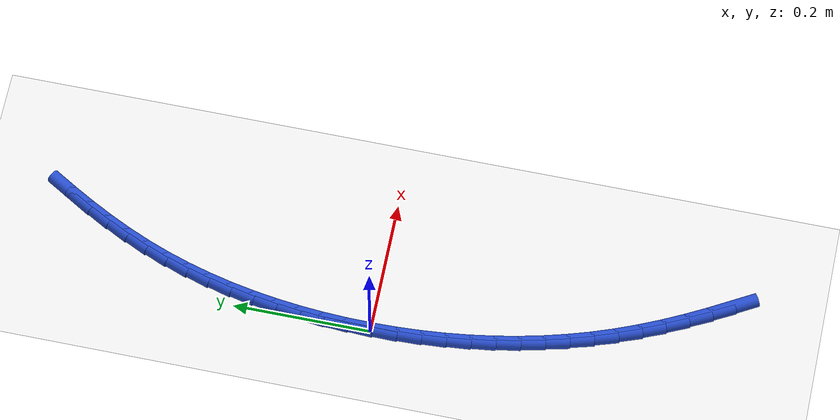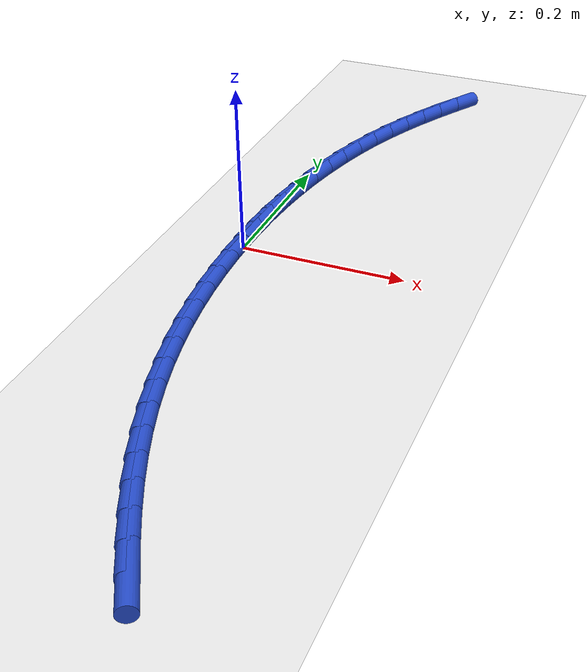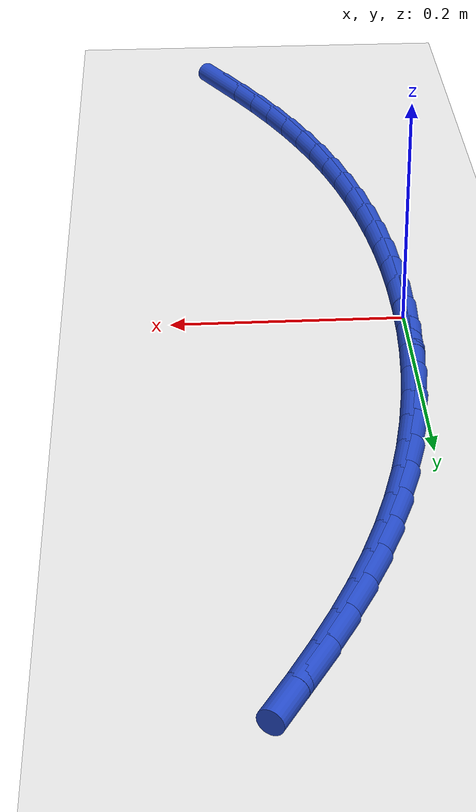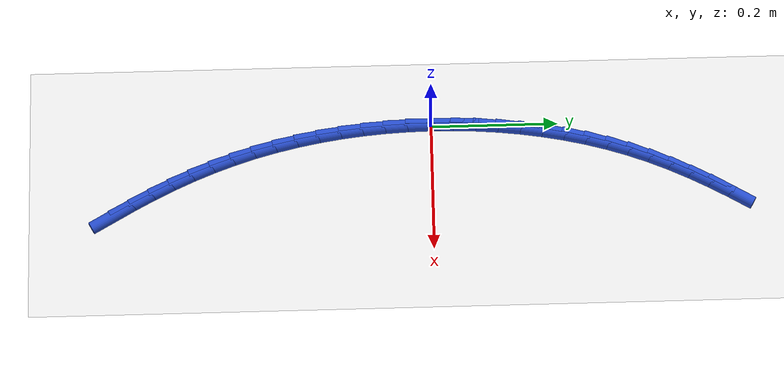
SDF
<sdf version="1.6">
 <world name="default">
  <model name="ground_plane">
   <static>1</static>
   <link name="link">
    <collision name="collision">
     <geometry><plane><normal>0 0 1</normal><size>100 100</size></plane></geometry>
     <surface><friction><ode><mu>100</mu><mu2>50</mu2></ode></friction></surface>
    </collision>
    <visual name="visual">
     <cast_shadows>0</cast_shadows>
     <geometry><plane><normal>0 0 1</normal><size>100 100</size></plane></geometry>
     <material>
      <script><uri>file://media/materials/scripts/gazebo.material</uri><name>Gazebo/WhiteGlow</name></script>
     </material>
    </visual>
   </link>
  </model>
  <model name="line">
   <link name="link_0">
    <pose>-5.204170427930421e-18 4.163336342344337e-17 0.01 0 1.57 1.557416992617884</pose>
    <collision name="collision">
     <geometry><cylinder><radius>0.01</radius><length>0.08</length></cylinder></geometry>
    </collision>
    <visual name="visual">
     <material>
      <script><name>Gazebo/Blue</name><uri>file://media/materials/scripts/gazebo.material</uri></script>
     </material>
     <geometry><cylinder><radius>0.01</radius><length>0.08</length></cylinder></geometry>
    </visual>
   </link>
   <link name="link_1">
    <pose>0.0004729191592340061 0.03534487845906107 0.01 0 1.57 1.5244383372521226</pose>
    <collision name="collision">
     <geometry><cylinder><radius>0.01</radius><length>0.08</length></cylinder></geometry>
    </collision>
    <visual name="visual">
     <material>
      <script><name>Gazebo/Blue</name><uri>file://media/materials/scripts/gazebo.material</uri></script>
     </material>
     <geometry><cylinder><radius>0.01</radius><length>0.08</length></cylinder></geometry>
    </visual>
   </link>
   <link name="link_2">
    <pose>0.0021103698437777247 0.07064143764103092 0.01 0 1.57 1.4904017385167414</pose>
    <collision name="collision">
     <geometry><cylinder><radius>0.01</radius><length>0.08</length></cylinder></geometry>
    </collision>
    <visual name="visual">
     <material>
      <script><name>Gazebo/Blue</name><uri>file://media/materials/scripts/gazebo.material</uri></script>
     </material>
     <geometry><cylinder><radius>0.01</radius><length>0.08</length></cylinder></geometry>
    </visual>
   </link>
   <link name="link_3">
    <pose>0.00494411020055783 0.10581336513079691 0.01 0 1.57 1.4551670417448703</pose>
    <collision name="collision">
     <geometry><cylinder><radius>0.01</radius><length>0.08</length></cylinder></geometry>
    </collision>
    <visual name="visual">
     <material>
      <script><name>Gazebo/Blue</name><uri>file://media/materials/scripts/gazebo.material</uri></script>
     </material>
     <geometry><cylinder><radius>0.01</radius><length>0.08</length></cylinder></geometry>
    </visual>
   </link>
   <link name="link_4">
    <pose>0.009005898376501011 0.14078434851324625 0.01 0 1.57 1.4185947935877465</pose>
    <collision name="collision">
     <geometry><cylinder><radius>0.01</radius><length>0.08</length></cylinder></geometry>
    </collision>
    <visual name="visual">
     <material>
      <script><name>Gazebo/Blue</name><uri>file://media/materials/scripts/gazebo.material</uri></script>
     </material>
     <geometry><cylinder><radius>0.01</radius><length>0.08</length></cylinder></geometry>
    </visual>
   </link>
   <link name="link_5">
    <pose>0.014327492518533956 0.17547807537326626 0.01 0 1.57 1.380547403349825</pose>
    <collision name="collision">
     <geometry><cylinder><radius>0.01</radius><length>0.08</length></cylinder></geometry>
    </collision>
    <visual name="visual">
     <material>
      <script><name>Gazebo/Blue</name><uri>file://media/materials/scripts/gazebo.material</uri></script>
     </material>
     <geometry><cylinder><radius>0.01</radius><length>0.08</length></cylinder></geometry>
    </visual>
   </link>
   <link name="link_6">
    <pose>0.020940650773583362 0.20981823329574423 0.01 0 1.57 1.340890981435575</pose>
    <collision name="collision">
     <geometry><cylinder><radius>0.01</radius><length>0.08</length></cylinder></geometry>
    </collision>
    <visual name="visual">
     <material>
      <script><name>Gazebo/Blue</name><uri>file://media/materials/scripts/gazebo.material</uri></script>
     </material>
     <geometry><cylinder><radius>0.01</radius><length>0.08</length></cylinder></geometry>
    </visual>
   </link>
   <link name="link_7">
    <pose>0.028877131288575896 0.24372850986556724 0.01 0 1.57 1.2994979687006996</pose>
    <collision name="collision">
     <geometry><cylinder><radius>0.01</radius><length>0.08</length></cylinder></geometry>
    </collision>
    <visual name="visual">
     <material>
      <script><name>Gazebo/Blue</name><uri>file://media/materials/scripts/gazebo.material</uri></script>
     </material>
     <geometry><cylinder><radius>0.01</radius><length>0.08</length></cylinder></geometry>
    </visual>
   </link>
   <link name="link_8">
    <pose>0.03816869221043826 0.2771325926676227 0.01 0 1.57 1.2562506655497028</pose>
    <collision name="collision">
     <geometry><cylinder><radius>0.01</radius><length>0.08</length></cylinder></geometry>
    </collision>
    <visual name="visual">
     <material>
      <script><name>Gazebo/Blue</name><uri>file://media/materials/scripts/gazebo.material</uri></script>
     </material>
     <geometry><cylinder><radius>0.01</radius><length>0.08</length></cylinder></geometry>
    </visual>
   </link>
   <link name="link_9">
    <pose>0.04884709168609716 0.309954169286798 0.01 0 1.57 1.2112063816526473</pose>
    <collision name="collision">
     <geometry><cylinder><radius>0.01</radius><length>0.08</length></cylinder></geometry>
    </collision>
    <visual name="visual">
     <material>
      <script><name>Gazebo/Blue</name><uri>file://media/materials/scripts/gazebo.material</uri></script>
     </material>
     <geometry><cylinder><radius>0.01</radius><length>0.08</length></cylinder></geometry>
    </visual>
   </link>
   <link name="link_10">
    <pose>0.060939858221996795 0.34212136266955595 0.01 0 1.57 1.167394309123897</pose>
    <collision name="collision">
     <geometry><cylinder><radius>0.01</radius><length>0.08</length></cylinder></geometry>
    </collision>
    <visual name="visual">
     <material>
      <script><name>Gazebo/Blue</name><uri>file://media/materials/scripts/gazebo.material</uri></script>
     </material>
     <geometry><cylinder><radius>0.01</radius><length>0.08</length></cylinder></geometry>
    </visual>
   </link>
   <link name="link_11">
    <pose>0.07439481141822145 0.37364588154748485 0.01 0 1.57 1.127766253802123</pose>
    <collision name="collision">
     <geometry><cylinder><radius>0.01</radius><length>0.08</length></cylinder></geometry>
    </collision>
    <visual name="visual">
     <material>
      <script><name>Gazebo/Blue</name><uri>file://media/materials/scripts/gazebo.material</uri></script>
     </material>
     <geometry><cylinder><radius>0.01</radius><length>0.08</length></cylinder></geometry>
    </visual>
   </link>
   <link name="link_12">
    <pose>0.08908875183017924 0.4046139079184511 0.01 0 1.57 1.0926438489299295</pose>
    <collision name="collision">
     <geometry><cylinder><radius>0.01</radius><length>0.08</length></cylinder></geometry>
    </collision>
    <visual name="visual">
     <material>
      <script><name>Gazebo/Blue</name><uri>file://media/materials/scripts/gazebo.material</uri></script>
     </material>
     <geometry><cylinder><radius>0.01</radius><length>0.08</length></cylinder></geometry>
    </visual>
   </link>
   <link name="link_13">
    <pose>0.10489599560796861 0.4351142290220418 0.01 0 1.57 1.0621579611416831</pose>
    <collision name="collision">
     <geometry><cylinder><radius>0.01</radius><length>0.08</length></cylinder></geometry>
    </collision>
    <visual name="visual">
     <material>
      <script><name>Gazebo/Blue</name><uri>file://media/materials/scripts/gazebo.material</uri></script>
     </material>
     <geometry><cylinder><radius>0.01</radius><length>0.08</length></cylinder></geometry>
    </visual>
   </link>
   <link name="link_14">
    <pose>0.12169085890168807 0.46523563209784374 0.01 0 1.57 1.0363622172110625</pose>
    <collision name="collision">
     <geometry><cylinder><radius>0.01</radius><length>0.08</length></cylinder></geometry>
    </collision>
    <visual name="visual">
     <material>
      <script><name>Gazebo/Blue</name><uri>file://media/materials/scripts/gazebo.material</uri></script>
     </material>
     <geometry><cylinder><radius>0.01</radius><length>0.08</length></cylinder></geometry>
    </visual>
   </link>
   <link name="link_175">
    <pose>0.13641728664654743 -0.4974605468488869 0.01 0 1.57 -1.0554844666187635</pose>
    <collision name="collision">
     <geometry><cylinder><radius>0.01</radius><length>0.08</length></cylinder></geometry>
    </collision>
    <visual name="visual">
     <material>
      <script><name>Gazebo/Blue</name><uri>file://media/materials/scripts/gazebo.material</uri></script>
     </material>
     <geometry><cylinder><radius>0.01</radius><length>0.08</length></cylinder></geometry>
    </visual>
   </link>
   <link name="link_176">
    <pose>0.11925473386617272 -0.4671569370326913 0.01 0 1.57 -1.08309467450982</pose>
    <collision name="collision">
     <geometry><cylinder><radius>0.01</radius><length>0.08</length></cylinder></geometry>
    </collision>
    <visual name="visual">
     <material>
      <script><name>Gazebo/Blue</name><uri>file://media/materials/scripts/gazebo.material</uri></script>
     </material>
     <geometry><cylinder><radius>0.01</radius><length>0.08</length></cylinder></geometry>
    </visual>
   </link>
   <link name="link_177">
    <pose>0.10301854711912886 -0.4365480059897081 0.01 0 1.57 -1.1139287467660923</pose>
    <collision name="collision">
     <geometry><cylinder><radius>0.01</radius><length>0.08</length></cylinder></geometry>
    </collision>
    <visual name="visual">
     <material>
      <script><name>Gazebo/Blue</name><uri>file://media/materials/scripts/gazebo.material</uri></script>
     </material>
     <geometry><cylinder><radius>0.01</radius><length>0.08</length></cylinder></geometry>
    </visual>
   </link>
   <link name="link_178">
    <pose>0.0877926508753455 -0.40557294991128523 0.01 0 1.57 -1.147921531235256</pose>
    <collision name="collision">
     <geometry><cylinder><radius>0.01</radius><length>0.08</length></cylinder></geometry>
    </collision>
    <visual name="visual">
     <material>
      <script><name>Gazebo/Blue</name><uri>file://media/materials/scripts/gazebo.material</uri></script>
     </material>
     <geometry><cylinder><radius>0.01</radius><length>0.08</length></cylinder></geometry>
    </visual>
   </link>
   <link name="link_179">
    <pose>0.07366096960475248 -0.3741709649887709 0.01 0 1.57 -1.1849582292445624</pose>
    <collision name="collision">
     <geometry><cylinder><radius>0.01</radius><length>0.08</length></cylinder></geometry>
    </collision>
    <visual name="visual">
     <material>
      <script><name>Gazebo/Blue</name><uri>file://media/materials/scripts/gazebo.material</uri></script>
     </material>
     <geometry><cylinder><radius>0.01</radius><length>0.08</length></cylinder></geometry>
    </visual>
   </link>
   <link name="link_180">
    <pose>0.06070742777727876 -0.34228124741351124 0.01 0 1.57 -1.2248041141118229</pose>
    <collision name="collision">
     <geometry><cylinder><radius>0.01</radius><length>0.08</length></cylinder></geometry>
    </collision>
    <visual name="visual">
     <material>
      <script><name>Gazebo/Blue</name><uri>file://media/materials/scripts/gazebo.material</uri></script>
     </material>
     <geometry><cylinder><radius>0.01</radius><length>0.08</length></cylinder></geometry>
    </visual>
   </link>
   <link name="link_181">
    <pose>0.049014333569719216 -0.30984487675530187 0.01 0 1.57 -1.2654896716216664</pose>
    <collision name="collision">
     <geometry><cylinder><radius>0.01</radius><length>0.08</length></cylinder></geometry>
    </collision>
    <visual name="visual">
     <material>
      <script><name>Gazebo/Blue</name><uri>file://media/materials/scripts/gazebo.material</uri></script>
     </material>
     <geometry><cylinder><radius>0.01</radius><length>0.08</length></cylinder></geometry>
    </visual>
   </link>
   <link name="link_182">
    <pose>0.03861779191098219 -0.27685677071476966 0.01 0 1.57 -1.305000065637275</pose>
    <collision name="collision">
     <geometry><cylinder><radius>0.01</radius><length>0.08</length></cylinder></geometry>
    </collision>
    <visual name="visual">
     <material>
      <script><name>Gazebo/Blue</name><uri>file://media/materials/scripts/gazebo.material</uri></script>
     </material>
     <geometry><cylinder><radius>0.01</radius><length>0.08</length></cylinder></geometry>
    </visual>
   </link>
   <link name="link_183">
    <pose>0.02950205107129976 -0.24337227273536347 0.01 0 1.57 -1.3432919700329073</pose>
    <collision name="collision">
     <geometry><cylinder><radius>0.01</radius><length>0.08</length></cylinder></geometry>
    </collision>
    <visual name="visual">
     <material>
      <script><name>Gazebo/Blue</name><uri>file://media/materials/scripts/gazebo.material</uri></script>
     </material>
     <geometry><cylinder><radius>0.01</radius><length>0.08</length></cylinder></geometry>
    </visual>
   </link>
   <link name="link_184">
    <pose>0.021648607620587984 -0.20944993266718984 0.01 0 1.57 -1.380437481314895</pose>
    <collision name="collision">
     <geometry><cylinder><radius>0.01</radius><length>0.08</length></cylinder></geometry>
    </collision>
    <visual name="visual">
     <material>
      <script><name>Gazebo/Blue</name><uri>file://media/materials/scripts/gazebo.material</uri></script>
     </material>
     <geometry><cylinder><radius>0.01</radius><length>0.08</length></cylinder></geometry>
    </visual>
   </link>
   <link name="link_185">
    <pose>0.015038958128762919 -0.1751483003603554 0.01 0 1.57 -1.4165154462320664</pose>
    <collision name="collision">
     <geometry><cylinder><radius>0.01</radius><length>0.08</length></cylinder></geometry>
    </collision>
    <visual name="visual">
     <material>
      <script><name>Gazebo/Blue</name><uri>file://media/materials/scripts/gazebo.material</uri></script>
     </material>
     <geometry><cylinder><radius>0.01</radius><length>0.08</length></cylinder></geometry>
    </visual>
   </link>
   <link name="link_186">
    <pose>0.009654599165740706 -0.14052592566496733 0.01 0 1.57 -1.4516097631141038</pose>
    <collision name="collision">
     <geometry><cylinder><radius>0.01</radius><length>0.08</length></cylinder></geometry>
    </collision>
    <visual name="visual">
     <material>
      <script><name>Gazebo/Blue</name><uri>file://media/materials/scripts/gazebo.material</uri></script>
     </material>
     <geometry><cylinder><radius>0.01</radius><length>0.08</length></cylinder></geometry>
    </visual>
   </link>
   <link name="link_187">
    <pose>0.0054770273014371805 -0.10564135843113079 0.01 0 1.57 -1.485808021247067</pose>
    <collision name="collision">
     <geometry><cylinder><radius>0.01</radius><length>0.08</length></cylinder></geometry>
    </collision>
    <visual name="visual">
     <material>
      <script><name>Gazebo/Blue</name><uri>file://media/materials/scripts/gazebo.material</uri></script>
     </material>
     <geometry><cylinder><radius>0.01</radius><length>0.08</length></cylinder></geometry>
    </visual>
   </link>
   <link name="link_188">
    <pose>0.0024877391057685203 -0.07055314850895301 0.01 0 1.57 -1.5192004519675284</pose>
    <collision name="collision">
     <geometry><cylinder><radius>0.01</radius><length>0.08</length></cylinder></geometry>
    </collision>
    <visual name="visual">
     <material>
      <script><name>Gazebo/Blue</name><uri>file://media/materials/scripts/gazebo.material</uri></script>
     </material>
     <geometry><cylinder><radius>0.01</radius><length>0.08</length></cylinder></geometry>
    </visual>
   </link>
   <link name="link_189">
    <pose>0.0006682311486507723 -0.03531984574854059 0.01 0 1.57 -1.5518791593584211</pose>
    <collision name="collision">
     <geometry><cylinder><radius>0.01</radius><length>0.08</length></cylinder></geometry>
    </collision>
    <visual name="visual">
     <material>
      <script><name>Gazebo/Blue</name><uri>file://media/materials/scripts/gazebo.material</uri></script>
     </material>
     <geometry><cylinder><radius>0.01</radius><length>0.08</length></cylinder></geometry>
    </visual>
   </link>
   <link name="link_190">
    <pose>-4.336808689942018e-18 -4.163336342344337e-17 0.01 0 1.57 1.557655056974821</pose>
    <collision name="collision">
     <geometry><cylinder><radius>0.01</radius><length>0.08</length></cylinder></geometry>
    </collision>
    <visual name="visual">
     <material>
      <script><name>Gazebo/Blue</name><uri>file://media/materials/scripts/gazebo.material</uri></script>
     </material>
     <geometry><cylinder><radius>0.01</radius><length>0.08</length></cylinder></geometry>
    </visual>
   </link>
   <link name="link_191">
    <pose>0.0004645422297322385 0.03534783888656211 0.01 0 1.57 1.557655056974821</pose>
    <collision name="collision">
     <geometry><cylinder><radius>0.01</radius><length>0.08</length></cylinder></geometry>
    </collision>
    <visual name="visual">
     <material>
      <script><name>Gazebo/Blue</name><uri>file://media/materials/scripts/gazebo.material</uri></script>
     </material>
     <geometry><cylinder><radius>0.01</radius><length>0.08</length></cylinder></geometry>
    </visual>
   </link>
  </model>
 </world>
</sdf>
